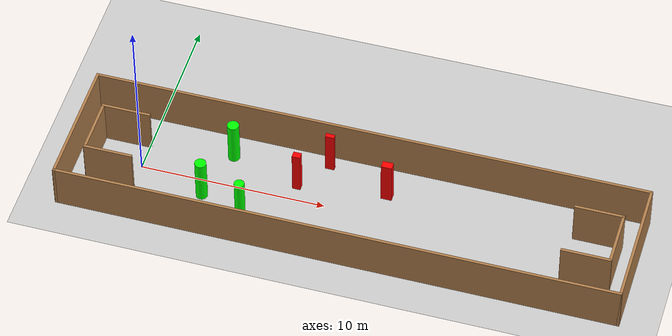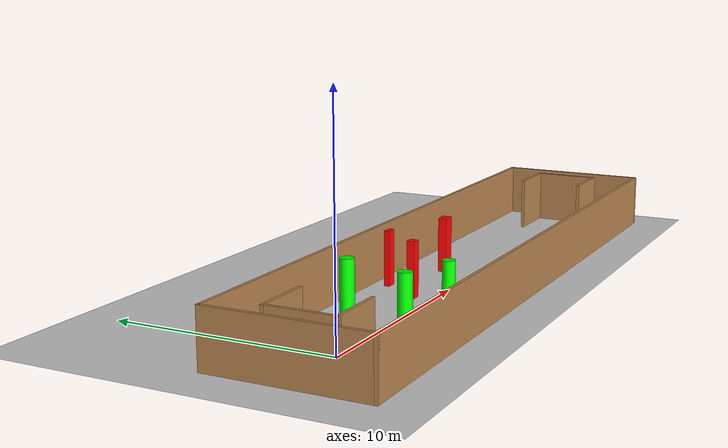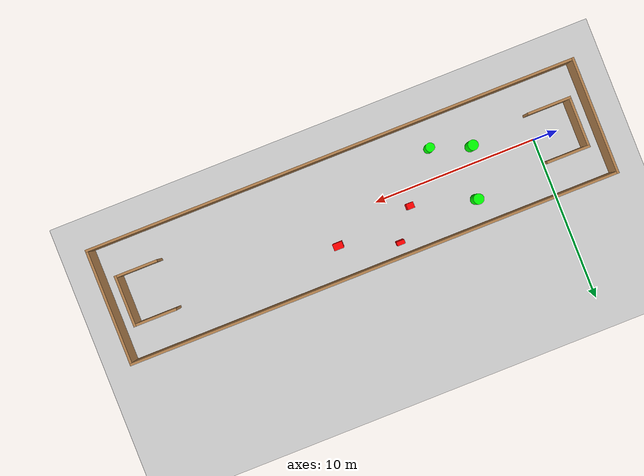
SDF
<sdf version="1.7">
 <world name="default">
  <light name="sun" type="directional">
   <pose>0 0 10 0 -0 0</pose>
   <diffuse>0.8 0.8 0.8 1</diffuse>
   <specular>0.2 0.2 0.2 1</specular>
   <attenuation>
    <range>1000</range>
    <constant>0.9</constant>
    <linear>0.01</linear>
    <quadratic>0.001</quadratic>
   </attenuation>
   <direction>-0.5 0.1 -0.9</direction>
   <spot><inner_angle>0</inner_angle><outer_angle>0</outer_angle><falloff>0</falloff></spot>
  </light>
  <model name="ground_plane">
   <static>1</static>
   <link name="link">
    <collision name="collision">
     <geometry><plane><normal>0 0 1</normal><size>100 100</size></plane></geometry>
     <surface>
      <contact><collide_bitmask>65535</collide_bitmask></contact>
      <friction><ode><mu>100</mu><mu2>50</mu2></ode></friction>
     </surface>
    </collision>
    <visual name="visual">
     <cast_shadows>0</cast_shadows>
     <geometry><plane><normal>0 0 1</normal><size>100 100</size></plane></geometry>
     <material>
      <script><uri>file://media/materials/scripts/gazebo.material</uri><name>Gazebo/Grey</name></script>
     </material>
    </visual>
   </link>
  </model>
  <gravity>0 0 -9.8</gravity>
  <magnetic_field>6e-06 2.3e-05 -4.2e-05</magnetic_field>
  <atmosphere type="adiabatic"/>
  <physics type="ode">
   <max_step_size>0.001</max_step_size>
   <real_time_factor>1</real_time_factor>
   <real_time_update_rate>1000</real_time_update_rate>
  </physics>
  <scene><ambient>0.4 0.4 0.4 1</ambient><background>0.7 0.7 0.7 1</background><shadows>1</shadows></scene>
  <spherical_coordinates>
   <surface_model>EARTH_WGS84</surface_model>
   <latitude_deg>0</latitude_deg>
   <longitude_deg>0</longitude_deg>
   <elevation>0</elevation>
   <heading_deg>0</heading_deg>
  </spherical_coordinates>
  <model name="my_base_walls">
   <link name="Wall_0">
    <collision name="Wall_0_Collision">
     <geometry><box><size>7.15 0.15 2.5</size></box></geometry>
     <pose>0 0 1.25 0 -0 0</pose>
    </collision>
    <visual name="Wall_0_Visual">
     <pose>0 0 1.25 0 -0 0</pose>
     <geometry><box><size>7.15 0.15 2.5</size></box></geometry>
     <material>
      <script><uri>file://media/materials/scripts/gazebo.material</uri><name>Gazebo/Wood</name></script>
      <ambient>1 1 1 1</ambient>
     </material>
     <meta><layer>0</layer></meta>
    </visual>
    <pose>-15 0 0 0 -0 1.5708</pose>
   </link>
   <link name="Wall_10">
    <collision name="Wall_10_Collision">
     <geometry><box><size>2.65 0.15 2.5</size></box></geometry>
     <pose>0 0 1.25 0 -0 0</pose>
    </collision>
    <visual name="Wall_10_Visual">
     <pose>0 0 1.25 0 -0 0</pose>
     <geometry><box><size>2.65 0.15 2.5</size></box></geometry>
     <material>
      <script><uri>file://media/materials/scripts/gazebo.material</uri><name>Gazebo/Wood</name></script>
      <ambient>1 1 1 1</ambient>
     </material>
     <meta><layer>0</layer></meta>
    </visual>
    <pose>-12.75 -1.5 0 0 -0 0</pose>
   </link>
   <link name="Wall_12">
    <collision name="Wall_12_Collision">
     <geometry><box><size>2.65 0.15 2.5</size></box></geometry>
     <pose>0 0 1.25 0 -0 0</pose>
    </collision>
    <visual name="Wall_12_Visual">
     <pose>0 0 1.25 0 -0 0</pose>
     <geometry><box><size>2.65 0.15 2.5</size></box></geometry>
     <material>
      <script><uri>file://media/materials/scripts/gazebo.material</uri><name>Gazebo/Wood</name></script>
      <ambient>1 1 1 1</ambient>
     </material>
     <meta><layer>0</layer></meta>
    </visual>
    <pose>-12.75 1.5 0 0 -0 0</pose>
   </link>
   <link name="Wall_14">
    <collision name="Wall_14_Collision">
     <geometry><box><size>3.15 0.15 2.5</size></box></geometry>
     <pose>0 0 1.25 0 -0 0</pose>
    </collision>
    <visual name="Wall_14_Visual">
     <pose>0 0 1.25 0 -0 0</pose>
     <geometry><box><size>3.15 0.15 2.5</size></box></geometry>
     <material>
      <script><uri>file://media/materials/scripts/gazebo.material</uri><name>Gazebo/Wood</name></script>
      <ambient>1 1 1 1</ambient>
     </material>
     <meta><layer>0</layer></meta>
    </visual>
    <pose>14 0 0 0 -0 -1.5708</pose>
   </link>
   <link name="Wall_15">
    <collision name="Wall_15_Collision">
     <geometry><box><size>2.65 0.15 2.5</size></box></geometry>
     <pose>0 0 1.25 0 -0 0</pose>
    </collision>
    <visual name="Wall_15_Visual">
     <pose>0 0 1.25 0 -0 0</pose>
     <geometry><box><size>2.65 0.15 2.5</size></box></geometry>
     <material>
      <script><uri>file://media/materials/scripts/gazebo.material</uri><name>Gazebo/Wood</name></script>
      <ambient>1 1 1 1</ambient>
     </material>
     <meta><layer>0</layer></meta>
    </visual>
    <pose>12.75 -1.5 0 0 -0 3.14159</pose>
   </link>
   <link name="Wall_17">
    <collision name="Wall_17_Collision">
     <geometry><box><size>2.65 0.15 2.5</size></box></geometry>
     <pose>0 0 1.25 0 -0 0</pose>
    </collision>
    <visual name="Wall_17_Visual">
     <pose>0 0 1.25 0 -0 0</pose>
     <geometry><box><size>2.65 0.15 2.5</size></box></geometry>
     <material>
      <script><uri>file://media/materials/scripts/gazebo.material</uri><name>Gazebo/Wood</name></script>
      <ambient>1 1 1 1</ambient>
     </material>
     <meta><layer>0</layer></meta>
    </visual>
    <pose>12.75 1.5 0 0 -0 3.14159</pose>
   </link>
   <link name="Wall_2">
    <collision name="Wall_2_Collision">
     <geometry><box><size>30.15 0.15 2.5</size></box></geometry>
     <pose>0 0 1.25 0 -0 0</pose>
    </collision>
    <visual name="Wall_2_Visual">
     <pose>0 0 1.25 0 -0 0</pose>
     <geometry><box><size>30.15 0.15 2.5</size></box></geometry>
     <material>
      <script><uri>file://media/materials/scripts/gazebo.material</uri><name>Gazebo/Wood</name></script>
      <ambient>1 1 1 1</ambient>
     </material>
     <meta><layer>0</layer></meta>
    </visual>
    <pose>-0 -3.5 0 0 -0 0</pose>
   </link>
   <link name="Wall_4">
    <collision name="Wall_4_Collision">
     <geometry><box><size>30.15 0.15 2.5</size></box></geometry>
     <pose>0 0 1.25 0 -0 0</pose>
    </collision>
    <visual name="Wall_4_Visual">
     <pose>0 0 1.25 0 -0 0</pose>
     <geometry><box><size>30.15 0.15 2.5</size></box></geometry>
     <material>
      <script><uri>file://media/materials/scripts/gazebo.material</uri><name>Gazebo/Wood</name></script>
      <ambient>1 1 1 1</ambient>
     </material>
     <meta><layer>0</layer></meta>
    </visual>
    <pose>-0 3.5 0 0 -0 0</pose>
   </link>
   <link name="Wall_6">
    <collision name="Wall_6_Collision">
     <geometry><box><size>7.15 0.15 2.5</size></box></geometry>
     <pose>0 0 1.25 0 -0 0</pose>
    </collision>
    <visual name="Wall_6_Visual">
     <pose>0 0 1.25 0 -0 0</pose>
     <geometry><box><size>7.15 0.15 2.5</size></box></geometry>
     <material>
      <script><uri>file://media/materials/scripts/gazebo.material</uri><name>Gazebo/Wood</name></script>
      <ambient>1 1 1 1</ambient>
     </material>
     <meta><layer>0</layer></meta>
    </visual>
    <pose>15 0 0 0 -0 -1.5708</pose>
   </link>
   <link name="Wall_9">
    <collision name="Wall_9_Collision">
     <geometry><box><size>3.15 0.15 2.5</size></box></geometry>
     <pose>0 0 1.25 0 -0 0</pose>
    </collision>
    <visual name="Wall_9_Visual">
     <pose>0 0 1.25 0 -0 0</pose>
     <geometry><box><size>3.15 0.15 2.5</size></box></geometry>
     <material>
      <script><uri>file://media/materials/scripts/gazebo.material</uri><name>Gazebo/Wood</name></script>
      <ambient>1 1 1 1</ambient>
     </material>
     <meta><layer>0</layer></meta>
    </visual>
    <pose>-14 0 0 0 -0 -1.5708</pose>
   </link>
   <static>1</static>
   <pose>11.5 0 0 0 -0 0</pose>
  </model>
  <model name="cylinder1">
   <static>1</static>
   <link name="link">
    <inertial>
     <mass>1</mass>
     <inertia><ixx>0.5</ixx><ixy>0</ixy><ixz>0</ixz><iyy>0.5</iyy><iyz>0</iyz><izz>1</izz></inertia>
    </inertial>
    <collision name="collision">
     <geometry><cylinder><radius>0.2737950911593371</radius><length>2.5</length></cylinder></geometry>
    </collision>
    <visual name="visual">
     <geometry><cylinder><radius>0.2737950911593371</radius><length>2.5</length></cylinder></geometry>
     <material>
      <ambient>0 1 0 1</ambient>
      <diffuse>0 1 0 1</diffuse>
      <specular>0.1 0.1 0.1 1</specular>
      <emissive>0 0 0 0</emissive>
     </material>
    </visual>
   </link>
   <pose>5.9850967857908675 -1.780845513677928 1.25 0 0 0</pose>
  </model>
  <model name="cylinder2">
   <static>1</static>
   <link name="link">
    <inertial>
     <mass>1</mass>
     <inertia><ixx>0.5</ixx><ixy>0</ixy><ixz>0</ixz><iyy>0.5</iyy><iyz>0</iyz><izz>1</izz></inertia>
    </inertial>
    <collision name="collision">
     <geometry><cylinder><radius>0.31382879694195864</radius><length>2.5</length></cylinder></geometry>
    </collision>
    <visual name="visual">
     <geometry><cylinder><radius>0.31382879694195864</radius><length>2.5</length></cylinder></geometry>
     <material>
      <ambient>0 1 0 1</ambient>
      <diffuse>0 1 0 1</diffuse>
      <specular>0.1 0.1 0.1 1</specular>
      <emissive>0 0 0 0</emissive>
     </material>
    </visual>
   </link>
   <pose>4.476917806485584 1.9993480933211671 1.25 0 0 0</pose>
  </model>
  <model name="cylinder3">
   <static>1</static>
   <link name="link">
    <inertial>
     <mass>1</mass>
     <inertia><ixx>0.5</ixx><ixy>0</ixy><ixz>0</ixz><iyy>0.5</iyy><iyz>0</iyz><izz>1</izz></inertia>
    </inertial>
    <collision name="collision">
     <geometry><cylinder><radius>0.31096023914534077</radius><length>2.5</length></cylinder></geometry>
    </collision>
    <visual name="visual">
     <geometry><cylinder><radius>0.31096023914534077</radius><length>2.5</length></cylinder></geometry>
     <material>
      <ambient>0 1 0 1</ambient>
      <diffuse>0 1 0 1</diffuse>
      <specular>0.1 0.1 0.1 1</specular>
      <emissive>0 0 0 0</emissive>
     </material>
    </visual>
   </link>
   <pose>3.6407987570588602 -0.997192633676153 1.25 0 0 0</pose>
  </model>
  <model name="box1">
   <static>1</static>
   <link name="link">
    <inertial>
     <mass>1</mass>
     <inertia><ixx>0.083</ixx><ixy>0</ixy><ixz>0</ixz><iyy>0.083</iyy><iyz>0</iyz><izz>0.083</izz></inertia>
    </inertial>
    <collision name="collision">
     <geometry><box><size>0.4328001342867598 0.34865621362229965 2.5</size></box></geometry>
    </collision>
    <visual name="visual">
     <geometry><box><size>0.4328001342867598 0.34865621362229965 2.5</size></box></geometry>
     <material>
      <ambient>1 0 0 1</ambient>
      <diffuse>1 0 0 1</diffuse>
      <specular>0.1 0.1 0.1 1</specular>
      <emissive>0 0 0 0</emissive>
     </material>
    </visual>
    <sensor name="my_contact" type="contact">
     <contact><collision>box_collision</collision><topic>__default_topic__</topic></contact>
    </sensor>
   </link>
   <pose>8.268236727951711 0.9244894103705477 1.25 0 0 0</pose>
  </model>
  <model name="box2">
   <static>1</static>
   <link name="link">
    <inertial>
     <mass>1</mass>
     <inertia><ixx>0.083</ixx><ixy>0</ixy><ixz>0</ixz><iyy>0.083</iyy><iyz>0</iyz><izz>0.083</izz></inertia>
    </inertial>
    <collision name="collision">
     <geometry><box><size>0.584553054276991 0.3938241003197167 2.5</size></box></geometry>
    </collision>
    <visual name="visual">
     <geometry><box><size>0.584553054276991 0.3938241003197167 2.5</size></box></geometry>
     <material>
      <ambient>1 0 0 1</ambient>
      <diffuse>1 0 0 1</diffuse>
      <specular>0.1 0.1 0.1 1</specular>
      <emissive>0 0 0 0</emissive>
     </material>
    </visual>
    <sensor name="my_contact" type="contact">
     <contact><collision>box_collision</collision><topic>__default_topic__</topic></contact>
    </sensor>
   </link>
   <pose>12.971849460251292 1.5527254136238682 1.25 0 0 0</pose>
  </model>
  <model name="box3">
   <static>1</static>
   <link name="link">
    <inertial>
     <mass>1</mass>
     <inertia><ixx>0.083</ixx><ixy>0</ixy><ixz>0</ixz><iyy>0.083</iyy><iyz>0</iyz><izz>0.083</izz></inertia>
    </inertial>
    <collision name="collision">
     <geometry><box><size>0.48439644833767576 0.23914880951919681 2.5</size></box></geometry>
    </collision>
    <visual name="visual">
     <geometry><box><size>0.48439644833767576 0.23914880951919681 2.5</size></box></geometry>
     <material>
      <ambient>1 0 0 1</ambient>
      <diffuse>1 0 0 1</diffuse>
      <specular>0.1 0.1 0.1 1</specular>
      <emissive>0 0 0 0</emissive>
     </material>
    </visual>
    <sensor name="my_contact" type="contact">
     <contact><collision>box_collision</collision><topic>__default_topic__</topic></contact>
    </sensor>
   </link>
   <pose>9.553390800937322 2.692797879327128 1.25 0 0 0</pose>
  </model>
 </world>
</sdf>
